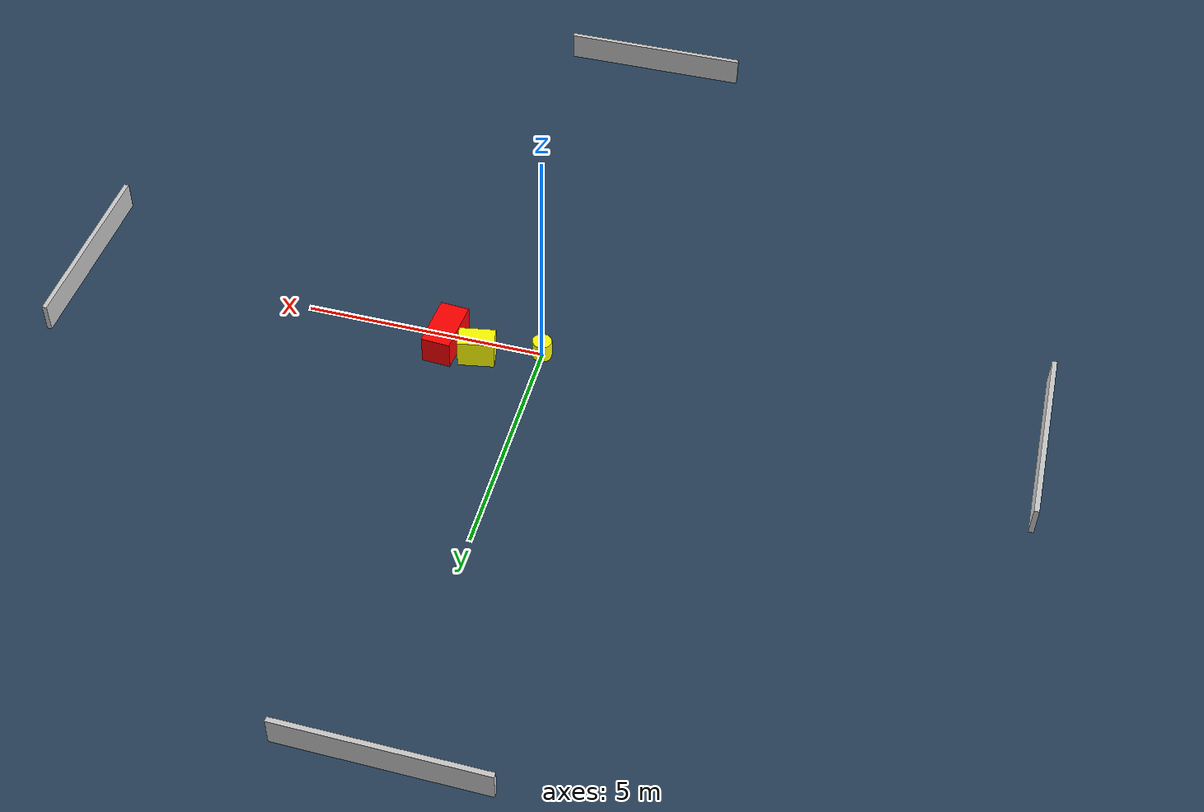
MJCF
<?xml version="1.0" ?>
<mujoco model="generated_environment">
  <option timestep="0.01" integrator="RK4" cone="elliptic"/>
  <default>
    <geom density="1"/>
  </default>
  <asset>
    <texture builtin="gradient" height="3072" name="skybox" rgb1="0.3 0.5 0.7" rgb2="0 0 0" type="skybox" width="512"/>
    <texture builtin="checker" height="300" name="groundplane" rgb1="0.2 0.3 0.4" rgb2="0.1 0.2 0.3" type="2d" width="300"/>
    <material name="groundplane" reflectance="0.2" texrepeat="5 5" texture="groundplane"/>
  </asset>
  <worldbody>
    <light dir="0 0 -1" directional="true" pos="0 0 1.5"/>
    <geom condim="3" friction="0.5 0.005 0.001" material="groundplane" name="floor" pos="0 0 0" size="0 0 0.05" type="plane"/>
    <body name="walls">
      <geom name="wall_1" condim="4" pos="-10.0 0.0 0.3" rgba="0.800000011920929 0.800000011920929 0.800000011920929 1.0" size="0.05 2.0 0.3" type="box"/>
      <geom name="wall_2" condim="4" pos="10.0 0.0 0.3" rgba="0.800000011920929 0.800000011920929 0.800000011920929 1.0" size="0.05 2.0 0.3" type="box"/>
      <geom name="wall_3" condim="4" pos="0.0 -10.0 0.3" rgba="0.800000011920929 0.800000011920929 0.800000011920929 1.0" size="2.0 0.05 0.3" type="box"/>
      <geom name="wall_4" condim="4" pos="0.0 10.0 0.3" rgba="0.800000011920929 0.800000011920929 0.800000011920929 1.0" size="2.0 0.05 0.3" type="box"/>
    </body>
    <body name="robot">
      <joint name="joint_x" type="slide" pos="0 0 0" axis="1 0 0"/>
      <joint name="joint_y" type="slide" pos="0 0 0" axis="0 1 0"/>
      <geom name="robot" type="cylinder" pos="0.0 0.0 0.2" size="0.2 0.2 0.0" mass="5.0" friction="1.0 0.005 0.0001" condim="4" rgba="1.0 1.0 0.0 1.0"/>
    </body>
    <body name="obstacle_1_movable">
      <geom name="obstacle_1_movable" condim="4" pos="1.2519346932577402 0.4328700858817088 0.3" euler="0 0 280.3576514530919" friction="0.0 0.005 0.001" rgba="1.0 1.0 0.0 1.0" size="0.2300127967514813 0.3731634831284249 0.3" type="box" mass="0.1"/>
      <joint type="free"/>
    </body>
    <body name="obstacle_2_static">
      <geom name="obstacle_2_static" condim="4" pos="1.969967266342442 0.24918401288940537 0.3" euler="0 0 176.5051573686815" friction="0.0 0.005 0.001" rgba="1.0 0.0 0.0 1.0" size="0.2995459718441397 0.5600265896099159 0.3" type="box"/>
    </body>
  </worldbody>
  <actuator>
    <motor name="actuator_x" joint="joint_x" gear="1" ctrlrange="-1 1"/>
    <motor name="actuator_y" joint="joint_y" gear="1" ctrlrange="-1 1"/>
  </actuator>
</mujoco>
